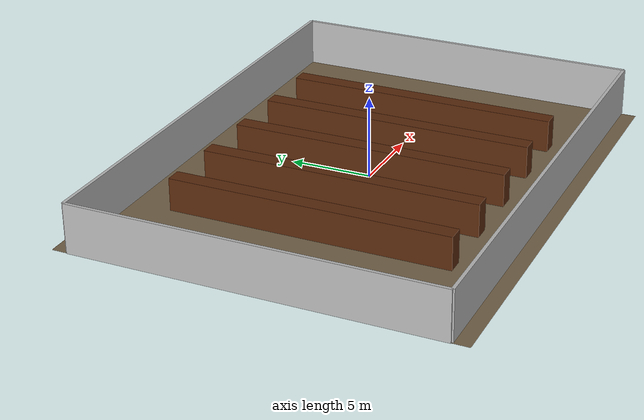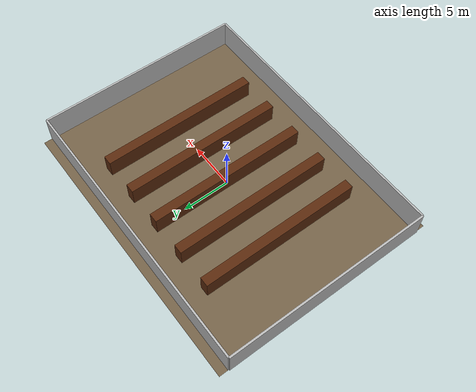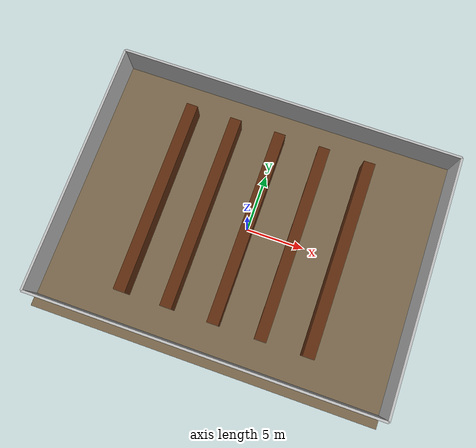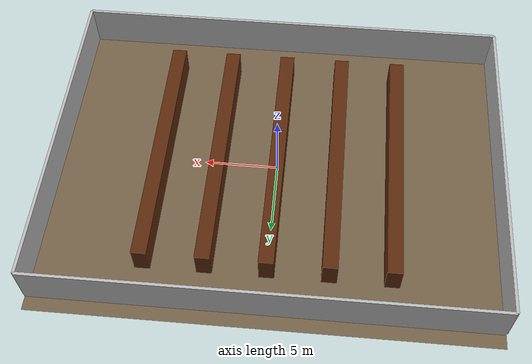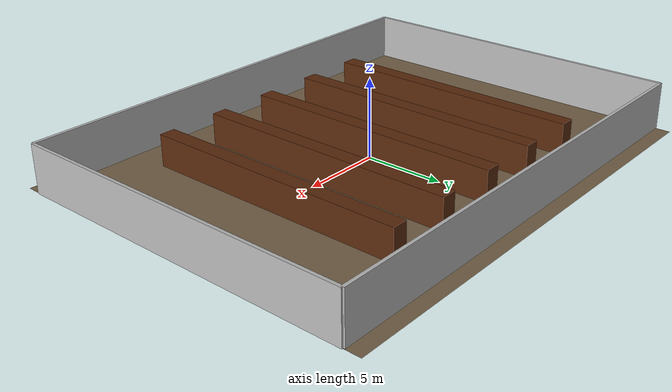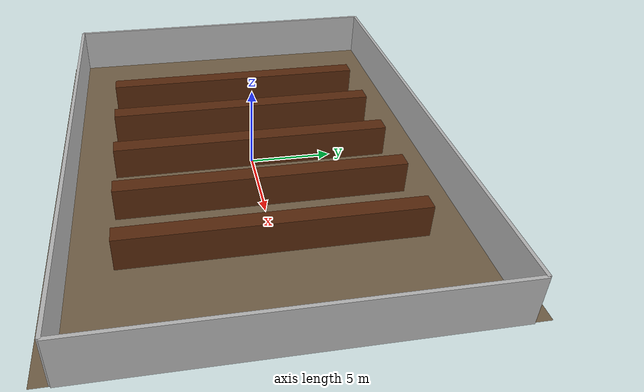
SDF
<?xml version="1.0" ?>
<!-- Adapted, self-contained layout based on the Apache-2.0 Bookstore world.
     AWS Robomaker Fuel models are intentionally not redistributed. -->
<sdf version="1.9"><world name="amr_bookstore">
  <plugin filename="gz-sim-physics-system" name="gz::sim::systems::Physics"/><plugin filename="gz-sim-sensors-system" name="gz::sim::systems::Sensors"><render_engine>ogre2</render_engine></plugin><plugin filename="gz-sim-imu-system" name="gz::sim::systems::Imu"/><plugin filename="gz-sim-user-commands-system" name="gz::sim::systems::UserCommands"/><plugin filename="gz-sim-scene-broadcaster-system" name="gz::sim::systems::SceneBroadcaster"/>
  <light type="directional" name="sun"><pose>0 0 10 0 0 0</pose><direction>-0.4 0.2 -0.9</direction></light>
  <model name="floor"><static>true</static><link name="link"><collision name="c"><geometry><plane><normal>0 0 1</normal><size>30 24</size></plane></geometry></collision><visual name="v"><geometry><plane><normal>0 0 1</normal><size>30 24</size></plane></geometry><material><diffuse>0.45 0.38 0.28 1</diffuse></material></visual></link></model>
  <model name="north_wall"><static>true</static><pose>0 11 1.5 0 0 0</pose><link name="l"><collision name="c"><geometry><box><size>30 .2 3</size></box></geometry></collision><visual name="v"><geometry><box><size>30 .2 3</size></box></geometry></visual></link></model><model name="south_wall"><static>true</static><pose>0 -11 1.5 0 0 0</pose><link name="l"><collision name="c"><geometry><box><size>30 .2 3</size></box></geometry></collision><visual name="v"><geometry><box><size>30 .2 3</size></box></geometry></visual></link></model>
  <model name="west_wall"><static>true</static><pose>-15 0 1.5 0 0 0</pose><link name="l"><collision name="c"><geometry><box><size>.2 22 3</size></box></geometry></collision><visual name="v"><geometry><box><size>.2 22 3</size></box></geometry></visual></link></model><model name="east_wall"><static>true</static><pose>15 0 1.5 0 0 0</pose><link name="l"><collision name="c"><geometry><box><size>.2 22 3</size></box></geometry></collision><visual name="v"><geometry><box><size>.2 22 3</size></box></geometry></visual></link></model>
  <!-- parallel shelf rows keep 1.4 m aisles for a MiR100 -->
  <model name="shelf_row_1"><static>true</static><pose>-8 0 1 0 0 0</pose><link name="l"><collision name="c"><geometry><box><size>1 17 2</size></box></geometry></collision><visual name="v"><geometry><box><size>1 17 2</size></box></geometry><material><diffuse>.35 .16 .05 1</diffuse></material></visual></link></model><model name="shelf_row_2"><static>true</static><pose>-4 0 1 0 0 0</pose><link name="l"><collision name="c"><geometry><box><size>1 17 2</size></box></geometry></collision><visual name="v"><geometry><box><size>1 17 2</size></box></geometry><material><diffuse>.35 .16 .05 1</diffuse></material></visual></link></model><model name="shelf_row_3"><static>true</static><pose>0 0 1 0 0 0</pose><link name="l"><collision name="c"><geometry><box><size>1 17 2</size></box></geometry></collision><visual name="v"><geometry><box><size>1 17 2</size></box></geometry><material><diffuse>.35 .16 .05 1</diffuse></material></visual></link></model><model name="shelf_row_4"><static>true</static><pose>4 0 1 0 0 0</pose><link name="l"><collision name="c"><geometry><box><size>1 17 2</size></box></geometry></collision><visual name="v"><geometry><box><size>1 17 2</size></box></geometry><material><diffuse>.35 .16 .05 1</diffuse></material></visual></link></model><model name="shelf_row_5"><static>true</static><pose>8 0 1 0 0 0</pose><link name="l"><collision name="c"><geometry><box><size>1 17 2</size></box></geometry></collision><visual name="v"><geometry><box><size>1 17 2</size></box></geometry><material><diffuse>.35 .16 .05 1</diffuse></material></visual></link></model>
</world></sdf>
